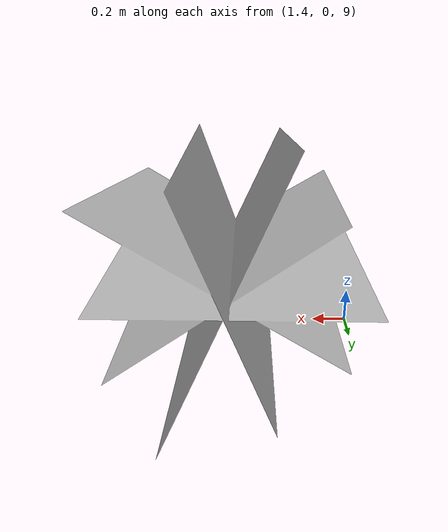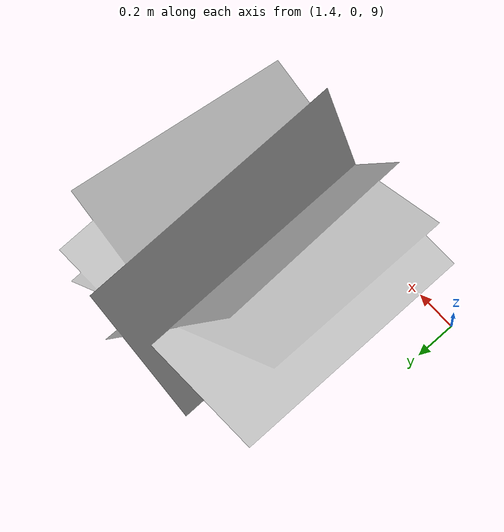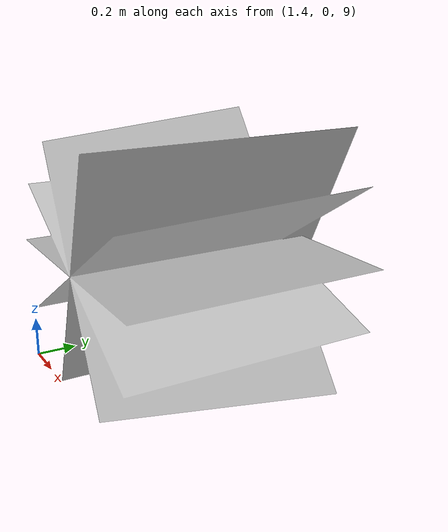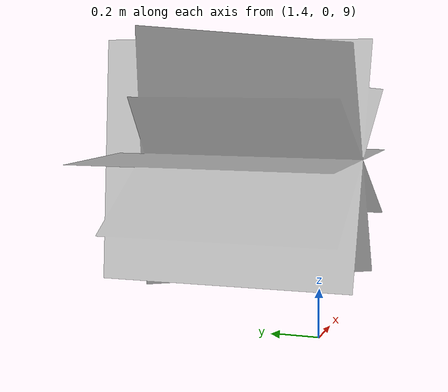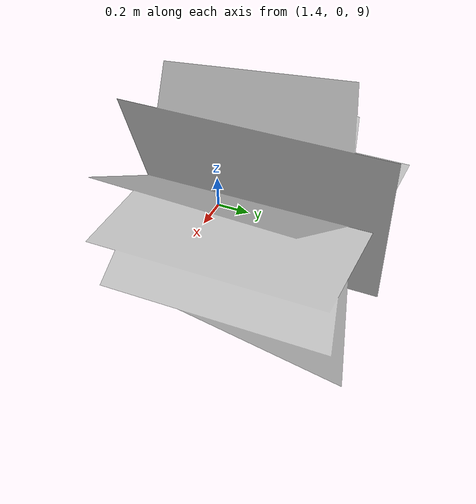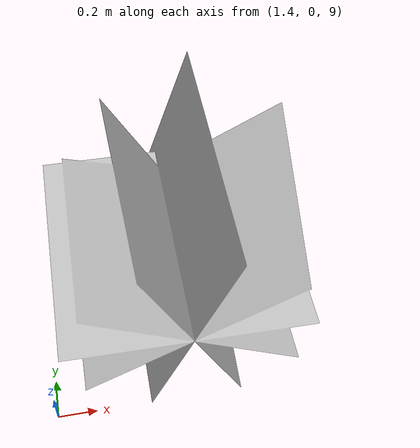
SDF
<?xml version="1.0" ?>
<sdf version="1.9">
  <model name="grass_01">
    <static>true</static>
    <link name="link">
      <collision name="collision">
        <pose>0 0 0.25 0 0 0</pose>
        <geometry>
          <box>
            <size>0.8 0.8 0.5</size>
          </box>
        </geometry>
      </collision>
      <visual name="visual">
        <geometry>
          <mesh>
            <uri>model://grass_01/meshes/Grass-01.obj</uri>
          </mesh>
        </geometry>
      </visual>
    </link>
  </model>
</sdf>
